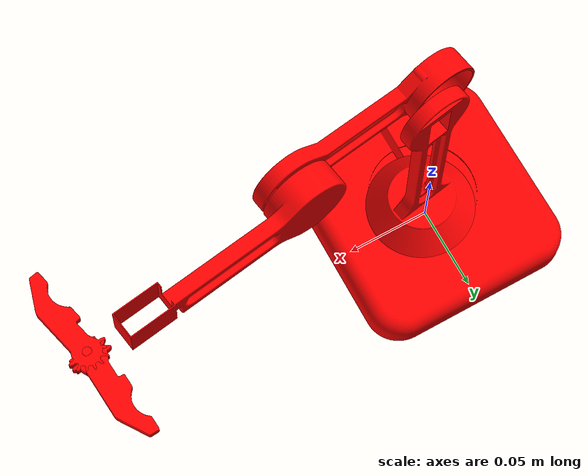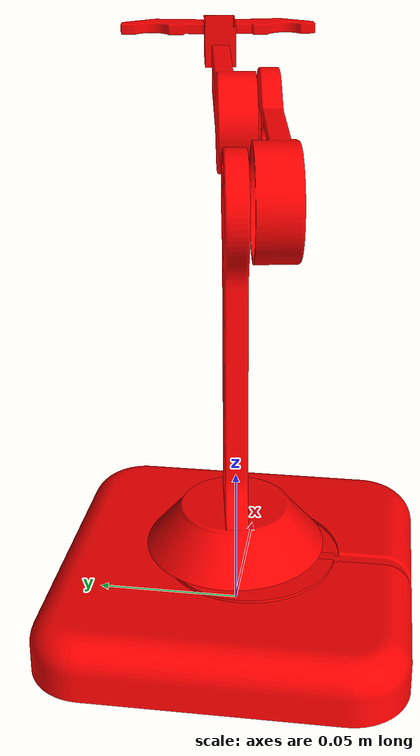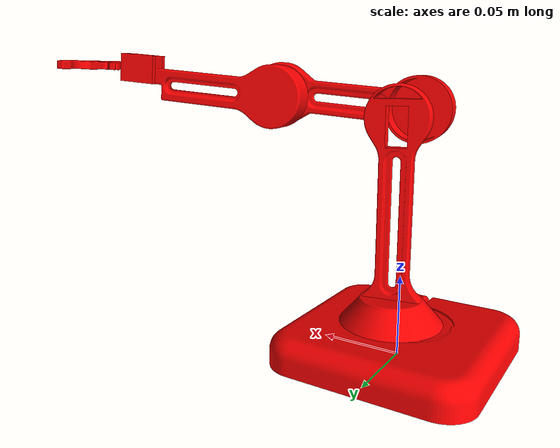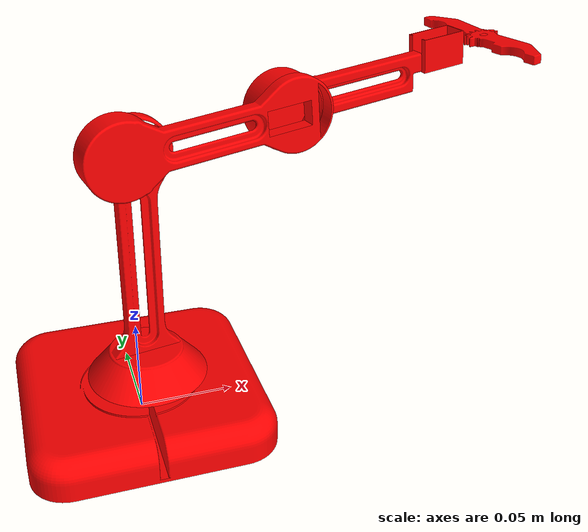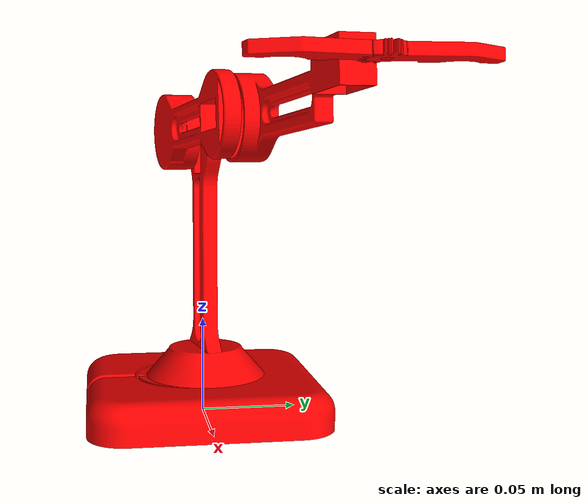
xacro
<?xml version="1.0" ?>
<robot name="twin" xmlns:xacro="http://www.ros.org/wiki/xacro">
  <xacro:arg name="is_ignition" default="true"/>
  <xacro:include filename="$(find twin_description)/urdf/arm_sim.xacro" />
  <xacro:include filename="$(find twin_description)/urdf/gazebo.xacro" />
  <xacro:include filename="$(find twin_description)/urdf/ros2control.xacro" />
</robot>

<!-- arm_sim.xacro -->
<robot name="twin" xmlns:xacro="http://www.ros.org/wiki/xacro">

  <!-- WORLD -->
  <link name="world"/>

  <joint name="world_to_base" type="fixed">
    <parent link="world"/>
    <child link="base_link"/>
  </joint>

  <!-- BASE -->
  <link name="base_link">
    <visual>
      <geometry>
        <mesh filename="package://twin_description/meshes/base_link.stl" scale="0.001 0.001 0.001"/>
      </geometry>
      <material name="red">
        <color rgba="1 0 0 1"/>
      </material>
    </visual>
    <collision>
      <geometry>
        <mesh filename="package://twin_description/meshes/base_link.stl" scale="0.001 0.001 0.001"/>
      </geometry>
    </collision>
    <inertial>
      <mass value="5.0"/>
      <inertia ixx="0.2" ixy="0" ixz="0" iyy="0.2" iyz="0" izz="0.2"/>
    </inertial>
  </link>

  <!-- LINK 1 -->
  <link name="link1">
    <visual>
      <geometry>
        <mesh filename="package://twin_description/meshes/link1.stl" scale="0.001 0.001 0.001"/>
      </geometry>
      <material name="red"/>
    </visual>
    <collision>
      <geometry>
        <mesh filename="package://twin_description/meshes/link1.stl" scale="0.001 0.001 0.001"/>
      </geometry>
    </collision>
    <inertial>
      <mass value="2.0"/>
      <inertia ixx="0.05" ixy="0" ixz="0" iyy="0.05" iyz="0" izz="0.05"/>
    </inertial>
  </link>

  <!-- JOINT 1 -->
  <joint name="joint_1" type="revolute">
    <parent link="base_link"/>
    <child link="link1"/>
    <origin xyz="0 0 0" rpy="0 0 0"/>
    <axis xyz="0 0 1"/>
    <limit lower="0.6981" upper="2.7925" effort="10" velocity="1"/>
    <dynamics damping="0.1" friction="0.1"/>
  </joint>
  <transmission name="joint_1_trans">
    <type>transmission_interface/SimpleTransmission</type>
    <joint name="joint_1"/>
    <actuator name="joint_1_motor">
      <mechanicalReduction>1</mechanicalReduction>
    </actuator>
  </transmission>

  <!-- LINK 2 -->
  <link name="link2">
    <visual>
      <origin xyz="0.0 0.0025 -0.1526" rpy="0 0 0"/>
      <geometry>
        <mesh filename="package://twin_description/meshes/link2.stl" scale="0.001 0.001 0.001"/>
      </geometry>
      <material name="red"/>
    </visual>
    <collision>
      <origin xyz="0.0 0.0025 -0.1526" rpy="0 0 0"/>
      <geometry>
        <mesh filename="package://twin_description/meshes/link2.stl" scale="0.001 0.001 0.001"/>
      </geometry>
    </collision>
    <inertial>
      <mass value="1.5"/>
      <inertia ixx="0.03" ixy="0" ixz="0" iyy="0.03" iyz="0" izz="0.03"/>
    </inertial>
  </link>

  <!-- JOINT 2 -->
  <joint name="joint_2" type="revolute">
    <parent link="link1"/>
    <child link="link2"/>
    <origin xyz="0.0 -0.0025 0.1526" rpy="0 0 0"/>
    <axis xyz="1 0 0"/>
    <limit lower="1.2217" upper="1.7453" effort="10" velocity="1"/>
    <dynamics damping="0.1" friction="0.1"/>
  </joint>
  <transmission name="joint_2_trans">
    <type>transmission_interface/SimpleTransmission</type>
    <joint name="joint_2"/>
    <actuator name="joint_2_motor">
      <mechanicalReduction>1</mechanicalReduction>
    </actuator>
  </transmission>

  <!-- LINK 3 -->
  <link name="link3">
    <visual>
      <origin xyz="0.0 0.0185 -0.249" rpy="0 0 0"/>
      <geometry>
        <mesh filename="package://twin_description/meshes/link3.stl" scale="0.001 0.001 0.001"/>
      </geometry>
      <material name="red"/>
    </visual>
    <collision>
      <origin xyz="0.0 0.0185 -0.249" rpy="0 0 0"/>
      <geometry>
        <mesh filename="package://twin_description/meshes/link3.stl" scale="0.001 0.001 0.001"/>
      </geometry>
    </collision>
    <inertial>
      <mass value="1.0"/>
      <inertia ixx="0.02" ixy="0" ixz="0" iyy="0.02" iyz="0" izz="0.02"/>
    </inertial>
  </link>

  <!-- JOINT 3 -->
  <joint name="joint_3" type="revolute">
    <parent link="link2"/>
    <child link="link3"/>
    <origin xyz="0.0 -0.0175 0.0964" rpy="0 0 0"/>
    <axis xyz="1 0 0"/>
    <limit lower="-3.14" upper="3.14" effort="10" velocity="1"/>
    <dynamics damping="0.1" friction="0.1"/>
  </joint>
  <transmission name="joint_3_trans">
    <type>transmission_interface/SimpleTransmission</type>
    <joint name="joint_3"/>
    <actuator name="joint_3_motor">
      <mechanicalReduction>1</mechanicalReduction>
    </actuator>
  </transmission>

  <!-- RIGHT GRIPPER -->
  <link name="right_gripper">
    <visual>
      <origin xyz="0 -0.008 -0.37" rpy="0 0 1.5708"/>
      <geometry>
        <mesh filename="package://twin_description/meshes/right_gripper.stl" scale="0.001 0.001 0.001"/>
      </geometry>
      <material name="red"/>
    </visual>
    <collision>
      <origin xyz="0 -0.008 -0.37" rpy="0 0 1.5708"/>
      <geometry>
        <mesh filename="package://twin_description/meshes/right_gripper.stl" scale="0.001 0.001 0.001"/>
      </geometry>
    </collision>
    <inertial>
      <mass value="0.5"/>
      <inertia ixx="0.005" ixy="0" ixz="0" iyy="0.005" iyz="0" izz="0.005"/>
    </inertial>
  </link>

  <!-- LEFT GRIPPER -->
  <link name="left_gripper">
    <visual>
      <origin xyz="0 0.008 -0.37" rpy="0 0 1.5708"/>
      <geometry>
        <mesh filename="package://twin_description/meshes/left_gripper.stl" scale="0.001 0.001 0.001"/>
      </geometry>
      <material name="red"/>
    </visual>
    <collision>
      <origin xyz="0 0.008 -0.37" rpy="0 0 1.5708"/>
      <geometry>
        <mesh filename="package://twin_description/meshes/left_gripper.stl" scale="0.001 0.001 0.001"/>
      </geometry>
    </collision>
    <inertial>
      <mass value="0.5"/>
      <inertia ixx="0.005" ixy="0" ixz="0" iyy="0.005" iyz="0" izz="0.005"/>
    </inertial>
  </link>

  <!-- JOINT 4 RIGHT GRIPPER -->
  <joint name="joint_4" type="revolute">
    <parent link="link3"/>
    <child link="right_gripper"/>
    <origin xyz="0.0 0.023 0.10" rpy="0 0 0"/>
    <axis xyz="0 1 0"/>
    <limit lower="1.2217" upper="1.7453" effort="10" velocity="1"/>
    <dynamics damping="0.1" friction="0.1"/>
  </joint>
  <transmission name="joint_4_trans">
    <type>transmission_interface/SimpleTransmission</type>
    <joint name="joint_4"/>
    <actuator name="joint_4_motor">
      <mechanicalReduction>1</mechanicalReduction>
    </actuator>
  </transmission>

  <!-- JOINT 5 LEFT GRIPPER MIMIC -->
  <joint name="joint_5" type="revolute">
    <parent link="link3"/>
    <child link="left_gripper"/>
    <origin xyz="0.0 0.007 0.10" rpy="0 0 0"/>
    <axis xyz="0 1 0"/>
    <limit lower="-1.7453" upper="-1.2217" effort="10" velocity="1"/>
    <mimic joint="joint_4" multiplier="-1"/>
    <dynamics damping="0.1" friction="0.1"/>
  </joint>
  <!-- No transmission for mimic joint -->

</robot>
